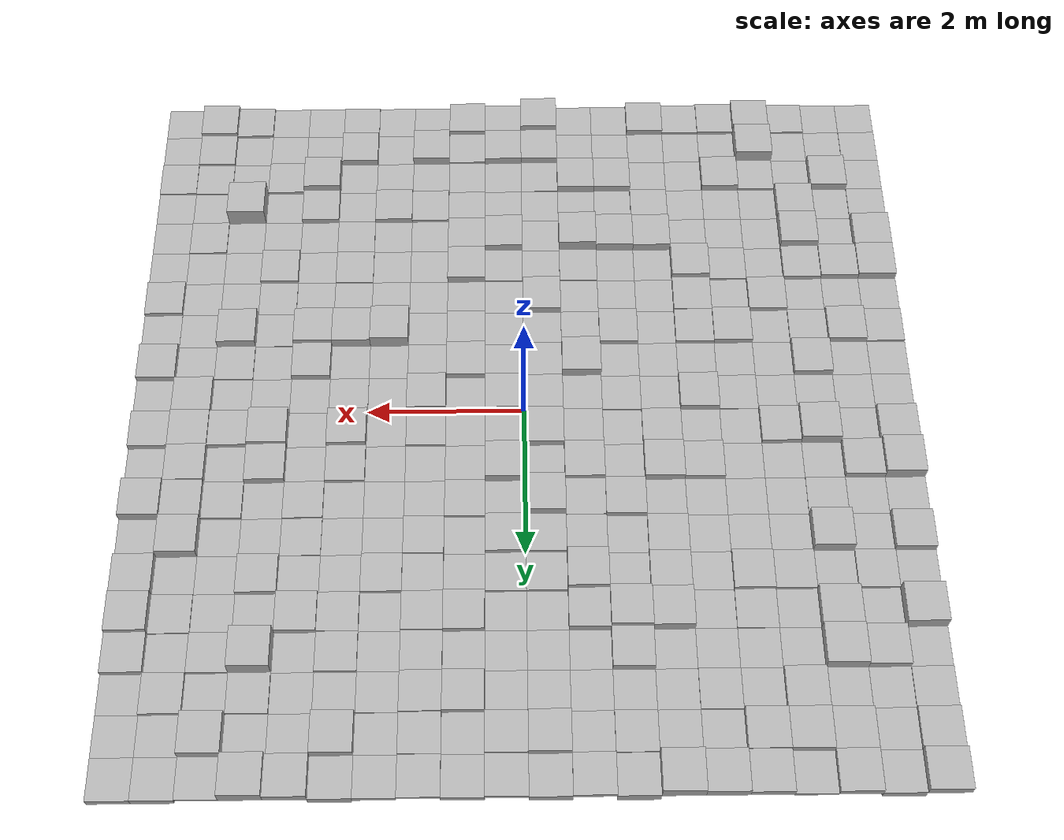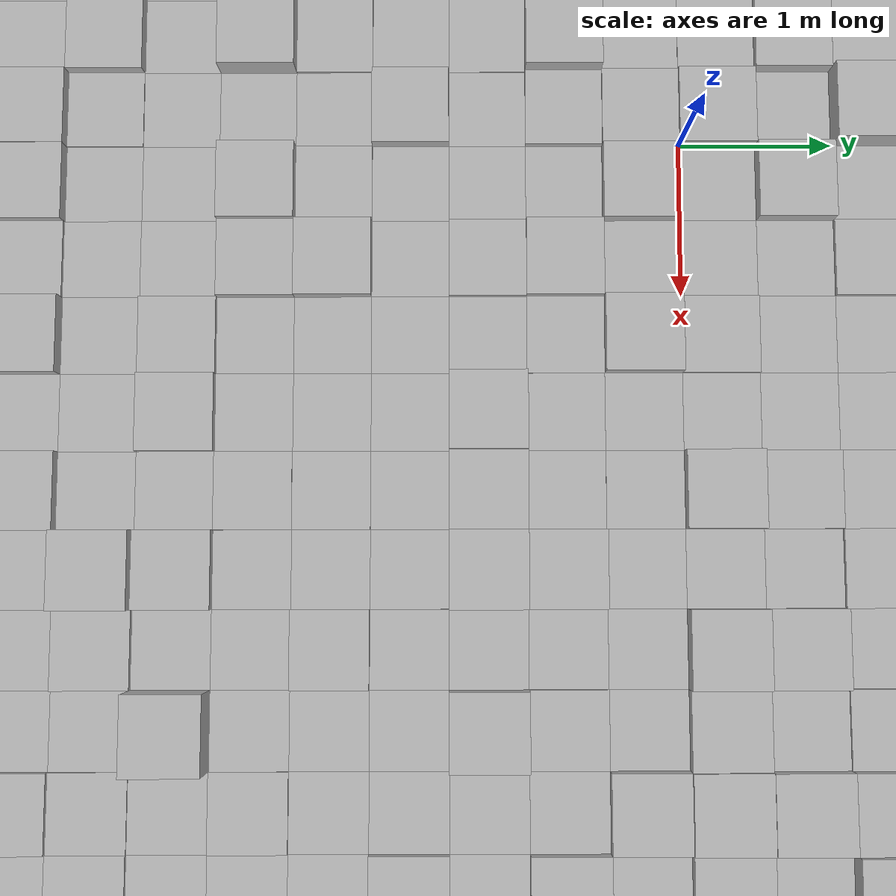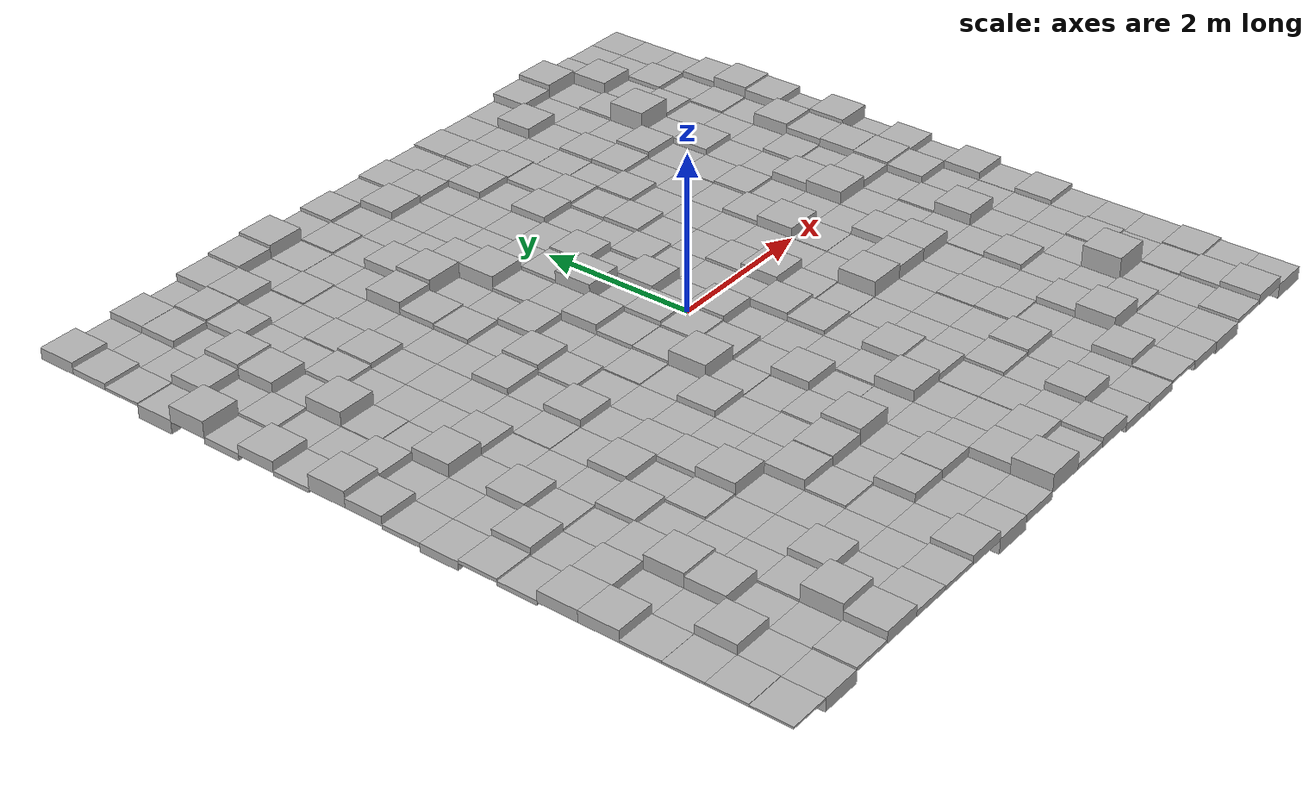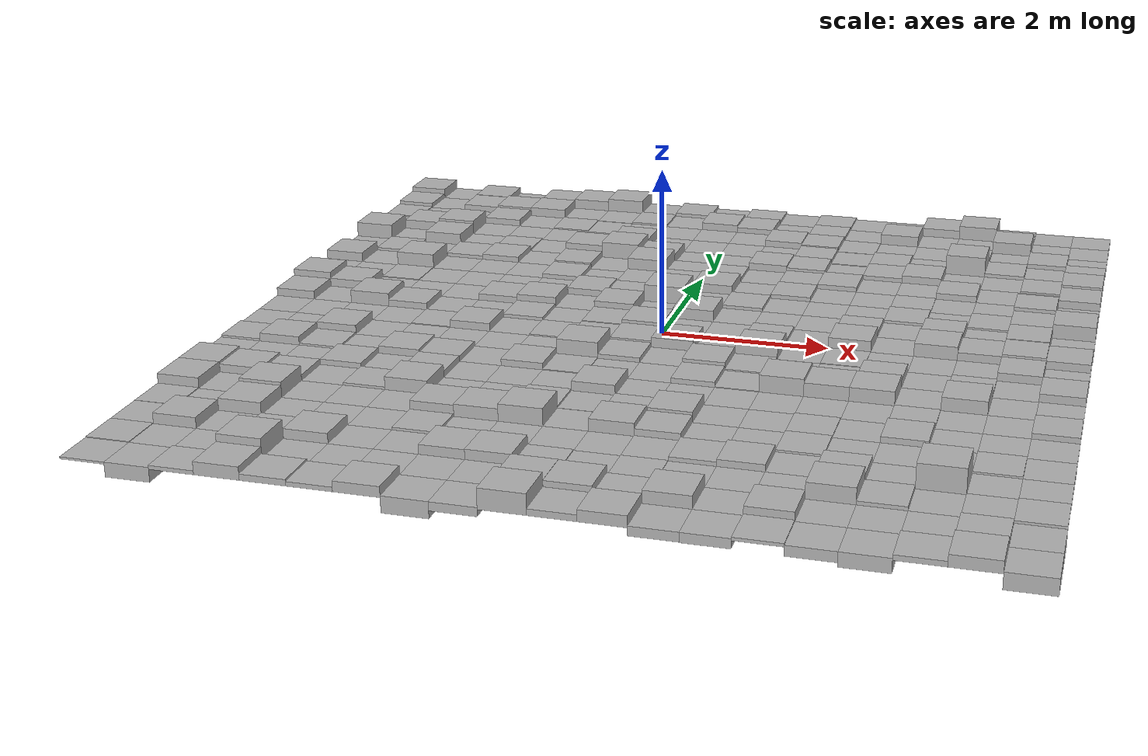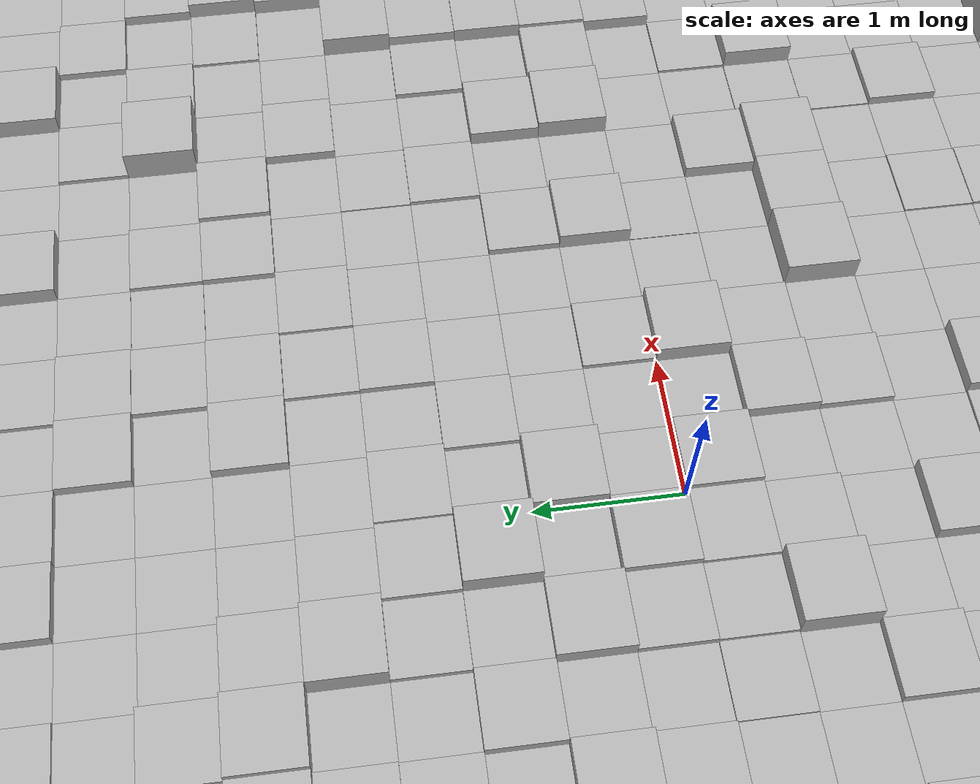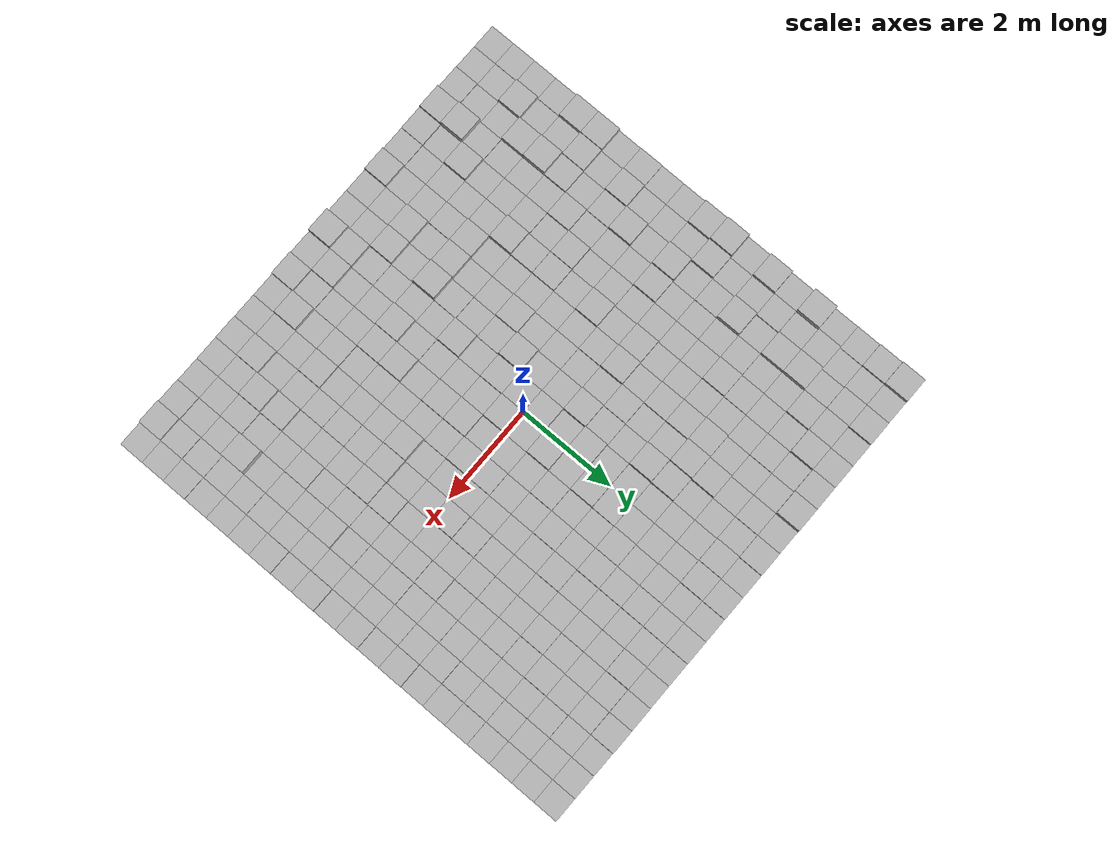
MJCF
<?xml version='1.0' encoding='utf-8'?>
<mujoco model="random_block_terrain"><worldbody><geom type="box" pos="-4.750 -4.750 -0.002" size="0.250 0.250 0.012" rgba="0.7 0.7 0.7 1" /><geom type="box" pos="-4.750 -4.250 0.004" size="0.250 0.250 0.014" rgba="0.7 0.7 0.7 1" /><geom type="box" pos="-4.750 -3.750 0.004" size="0.250 0.250 0.014" rgba="0.7 0.7 0.7 1" /><geom type="box" pos="-4.750 -3.250 0.005" size="0.250 0.250 0.015" rgba="0.7 0.7 0.7 1" /><geom type="box" pos="-4.750 -2.750 0.062" size="0.250 0.250 0.072" rgba="0.7 0.7 0.7 1" /><geom type="box" pos="-4.750 -2.250 0.062" size="0.250 0.250 0.072" rgba="0.7 0.7 0.7 1" /><geom type="box" pos="-4.750 -1.750 -0.019" size="0.250 0.250 0.029" rgba="0.7 0.7 0.7 1" /><geom type="box" pos="-4.750 -1.250 0.013" size="0.250 0.250 0.023" rgba="0.7 0.7 0.7 1" /><geom type="box" pos="-4.750 -0.750 -0.044" size="0.250 0.250 0.054" rgba="0.7 0.7 0.7 1" /><geom type="box" pos="-4.750 -0.250 -0.018" size="0.250 0.250 0.028" rgba="0.7 0.7 0.7 1" /><geom type="box" pos="-4.750 0.250 0.050" size="0.250 0.250 0.060" rgba="0.7 0.7 0.7 1" /><geom type="box" pos="-4.750 0.750 0.091" size="0.250 0.250 0.101" rgba="0.7 0.7 0.7 1" /><geom type="box" pos="-4.750 1.250 -0.017" size="0.250 0.250 0.027" rgba="0.7 0.7 0.7 1" /><geom type="box" pos="-4.750 1.750 0.059" size="0.250 0.250 0.069" rgba="0.7 0.7 0.7 1" /><geom type="box" pos="-4.750 2.250 -0.033" size="0.250 0.250 0.043" rgba="0.7 0.7 0.7 1" /><geom type="box" pos="-4.750 2.750 0.096" size="0.250 0.250 0.106" rgba="0.7 0.7 0.7 1" /><geom type="box" pos="-4.750 3.250 -0.076" size="0.250 0.250 0.086" rgba="0.7 0.7 0.7 1" /><geom type="box" pos="-4.750 3.750 0.007" size="0.250 0.250 0.017" rgba="0.7 0.7 0.7 1" /><geom type="box" pos="-4.750 4.250 0.030" size="0.250 0.250 0.040" rgba="0.7 0.7 0.7 1" /><geom type="box" pos="-4.750 4.750 0.063" size="0.250 0.250 0.073" rgba="0.7 0.7 0.7 1" /><geom type="box" pos="-4.250 -4.750 -0.073" size="0.250 0.250 0.083" rgba="0.7 0.7 0.7 1" /><geom type="box" pos="-4.250 -4.250 -0.061" size="0.250 0.250 0.071" rgba="0.7 0.7 0.7 1" /><geom type="box" pos="-4.250 -3.750 0.062" size="0.250 0.250 0.072" rgba="0.7 0.7 0.7 1" /><geom type="box" pos="-4.250 -3.250 -0.065" size="0.250 0.250 0.075" rgba="0.7 0.7 0.7 1" /><geom type="box" pos="-4.250 -2.750 -0.039" size="0.250 0.250 0.049" rgba="0.7 0.7 0.7 1" /><geom type="box" pos="-4.250 -2.250 0.048" size="0.250 0.250 0.058" rgba="0.7 0.7 0.7 1" /><geom type="box" pos="-4.250 -1.750 -0.014" size="0.250 0.250 0.024" rgba="0.7 0.7 0.7 1" /><geom type="box" pos="-4.250 -1.250 0.050" size="0.250 0.250 0.060" rgba="0.7 0.7 0.7 1" /><geom type="box" pos="-4.250 -0.750 -0.015" size="0.250 0.250 0.025" rgba="0.7 0.7 0.7 1" /><geom type="box" pos="-4.250 -0.250 -0.016" size="0.250 0.250 0.026" rgba="0.7 0.7 0.7 1" /><geom type="box" pos="-4.250 0.250 -0.017" size="0.250 0.250 0.027" rgba="0.7 0.7 0.7 1" /><geom type="box" pos="-4.250 0.750 0.052" size="0.250 0.250 0.062" rgba="0.7 0.7 0.7 1" /><geom type="box" pos="-4.250 1.250 -0.054" size="0.250 0.250 0.064" rgba="0.7 0.7 0.7 1" /><geom type="box" pos="-4.250 1.750 -0.046" size="0.250 0.250 0.056" rgba="0.7 0.7 0.7 1" /><geom type="box" pos="-4.250 2.250 0.018" size="0.250 0.250 0.028" rgba="0.7 0.7 0.7 1" /><geom type="box" pos="-4.250 2.750 -0.065" size="0.250 0.250 0.075" rgba="0.7 0.7 0.7 1" /><geom type="box" pos="-4.250 3.250 0.060" size="0.250 0.250 0.070" rgba="0.7 0.7 0.7 1" /><geom type="box" pos="-4.250 3.750 -0.026" size="0.250 0.250 0.036" rgba="0.7 0.7 0.7 1" /><geom type="box" pos="-4.250 4.250 -0.102" size="0.250 0.250 0.112" rgba="0.7 0.7 0.7 1" /><geom type="box" pos="-4.250 4.750 -0.058" size="0.250 0.250 0.068" rgba="0.7 0.7 0.7 1" /><geom type="box" pos="-3.750 -4.750 0.012" size="0.250 0.250 0.022" rgba="0.7 0.7 0.7 1" /><geom type="box" pos="-3.750 -4.250 -0.021" size="0.250 0.250 0.031" rgba="0.7 0.7 0.7 1" /><geom type="box" pos="-3.750 -3.750 -0.038" size="0.250 0.250 0.048" rgba="0.7 0.7 0.7 1" /><geom type="box" pos="-3.750 -3.250 0.071" size="0.250 0.250 0.081" rgba="0.7 0.7 0.7 1" /><geom type="box" pos="-3.750 -2.750 0.089" size="0.250 0.250 0.099" rgba="0.7 0.7 0.7 1" /><geom type="box" pos="-3.750 -2.250 0.033" size="0.250 0.250 0.043" rgba="0.7 0.7 0.7 1" /><geom type="box" pos="-3.750 -1.750 -0.079" size="0.250 0.250 0.089" rgba="0.7 0.7 0.7 1" /><geom type="box" pos="-3.750 -1.250 0.012" size="0.250 0.250 0.022" rgba="0.7 0.7 0.7 1" /><geom type="box" pos="-3.750 -0.750 0.054" size="0.250 0.250 0.064" rgba="0.7 0.7 0.7 1" /><geom type="box" pos="-3.750 -0.250 -0.020" size="0.250 0.250 0.030" rgba="0.7 0.7 0.7 1" /><geom type="box" pos="-3.750 0.250 0.081" size="0.250 0.250 0.091" rgba="0.7 0.7 0.7 1" /><geom type="box" pos="-3.750 0.750 -0.027" size="0.250 0.250 0.037" rgba="0.7 0.7 0.7 1" /><geom type="box" pos="-3.750 1.250 0.005" size="0.250 0.250 0.015" rgba="0.7 0.7 0.7 1" /><geom type="box" pos="-3.750 1.750 0.089" size="0.250 0.250 0.099" rgba="0.7 0.7 0.7 1" /><geom type="box" pos="-3.750 2.250 -0.058" size="0.250 0.250 0.068" rgba="0.7 0.7 0.7 1" /><geom type="box" pos="-3.750 2.750 0.073" size="0.250 0.250 0.083" rgba="0.7 0.7 0.7 1" /><geom type="box" pos="-3.750 3.250 0.089" size="0.250 0.250 0.099" rgba="0.7 0.7 0.7 1" /><geom type="box" pos="-3.750 3.750 -0.032" size="0.250 0.250 0.042" rgba="0.7 0.7 0.7 1" /><geom type="box" pos="-3.750 4.250 0.042" size="0.250 0.250 0.052" rgba="0.7 0.7 0.7 1" /><geom type="box" pos="-3.750 4.750 0.044" size="0.250 0.250 0.054" rgba="0.7 0.7 0.7 1" /><geom type="box" pos="-3.250 -4.750 0.063" size="0.250 0.250 0.073" rgba="0.7 0.7 0.7 1" /><geom type="box" pos="-3.250 -4.250 0.107" size="0.250 0.250 0.117" rgba="0.7 0.7 0.7 1" /><geom type="box" pos="-3.250 -3.750 0.013" size="0.250 0.250 0.023" rgba="0.7 0.7 0.7 1" /><geom type="box" pos="-3.250 -3.250 -0.046" size="0.250 0.250 0.056" rgba="0.7 0.7 0.7 1" /><geom type="box" pos="-3.250 -2.750 -0.063" size="0.250 0.250 0.073" rgba="0.7 0.7 0.7 1" /><geom type="box" pos="-3.250 -2.250 -0.080" size="0.250 0.250 0.090" rgba="0.7 0.7 0.7 1" /><geom type="box" pos="-3.250 -1.750 0.033" size="0.250 0.250 0.043" rgba="0.7 0.7 0.7 1" /><geom type="box" pos="-3.250 -1.250 -0.034" size="0.250 0.250 0.044" rgba="0.7 0.7 0.7 1" /><geom type="box" pos="-3.250 -0.750 -0.015" size="0.250 0.250 0.025" rgba="0.7 0.7 0.7 1" /><geom type="box" pos="-3.250 -0.250 -0.086" size="0.250 0.250 0.096" rgba="0.7 0.7 0.7 1" /><geom type="box" pos="-3.250 0.250 0.041" size="0.250 0.250 0.051" rgba="0.7 0.7 0.7 1" /><geom type="box" pos="-3.250 0.750 -0.087" size="0.250 0.250 0.097" rgba="0.7 0.7 0.7 1" /><geom type="box" pos="-3.250 1.250 -0.027" size="0.250 0.250 0.037" rgba="0.7 0.7 0.7 1" /><geom type="box" pos="-3.250 1.750 -0.057" size="0.250 0.250 0.067" rgba="0.7 0.7 0.7 1" /><geom type="box" pos="-3.250 2.250 0.023" size="0.250 0.250 0.033" rgba="0.7 0.7 0.7 1" /><geom type="box" pos="-3.250 2.750 -0.022" size="0.250 0.250 0.032" rgba="0.7 0.7 0.7 1" /><geom type="box" pos="-3.250 3.250 -0.049" size="0.250 0.250 0.059" rgba="0.7 0.7 0.7 1" /><geom type="box" pos="-3.250 3.750 0.042" size="0.250 0.250 0.052" rgba="0.7 0.7 0.7 1" /><geom type="box" pos="-3.250 4.250 0.055" size="0.250 0.250 0.065" rgba="0.7 0.7 0.7 1" /><geom type="box" pos="-3.250 4.750 -0.015" size="0.250 0.250 0.025" rgba="0.7 0.7 0.7 1" /><geom type="box" pos="-2.750 -4.750 0.025" size="0.250 0.250 0.035" rgba="0.7 0.7 0.7 1" /><geom type="box" pos="-2.750 -4.250 -0.051" size="0.250 0.250 0.061" rgba="0.7 0.7 0.7 1" /><geom type="box" pos="-2.750 -3.750 0.057" size="0.250 0.250 0.067" rgba="0.7 0.7 0.7 1" /><geom type="box" pos="-2.750 -3.250 -0.013" size="0.250 0.250 0.023" rgba="0.7 0.7 0.7 1" /><geom type="box" pos="-2.750 -2.750 -0.087" size="0.250 0.250 0.097" rgba="0.7 0.7 0.7 1" /><geom type="box" pos="-2.750 -2.250 0.015" size="0.250 0.250 0.025" rgba="0.7 0.7 0.7 1" /><geom type="box" pos="-2.750 -1.750 -0.022" size="0.250 0.250 0.032" rgba="0.7 0.7 0.7 1" /><geom type="box" pos="-2.750 -1.250 0.045" size="0.250 0.250 0.055" rgba="0.7 0.7 0.7 1" /><geom type="box" pos="-2.750 -0.750 -0.032" size="0.250 0.250 0.042" rgba="0.7 0.7 0.7 1" /><geom type="box" pos="-2.750 -0.250 0.005" size="0.250 0.250 0.015" rgba="0.7 0.7 0.7 1" /><geom type="box" pos="-2.750 0.250 -0.006" size="0.250 0.250 0.016" rgba="0.7 0.7 0.7 1" /><geom type="box" pos="-2.750 0.750 -0.035" size="0.250 0.250 0.045" rgba="0.7 0.7 0.7 1" /><geom type="box" pos="-2.750 1.250 -0.075" size="0.250 0.250 0.085" rgba="0.7 0.7 0.7 1" /><geom type="box" pos="-2.750 1.750 -0.089" size="0.250 0.250 0.099" rgba="0.7 0.7 0.7 1" /><geom type="box" pos="-2.750 2.250 0.035" size="0.250 0.250 0.045" rgba="0.7 0.7 0.7 1" /><geom type="box" pos="-2.750 2.750 0.009" size="0.250 0.250 0.019" rgba="0.7 0.7 0.7 1" /><geom type="box" pos="-2.750 3.250 -0.012" size="0.250 0.250 0.022" rgba="0.7 0.7 0.7 1" /><geom type="box" pos="-2.750 3.750 -0.081" size="0.250 0.250 0.091" rgba="0.7 0.7 0.7 1" /><geom type="box" pos="-2.750 4.250 0.059" size="0.250 0.250 0.069" rgba="0.7 0.7 0.7 1" /><geom type="box" pos="-2.750 4.750 0.048" size="0.250 0.250 0.058" rgba="0.7 0.7 0.7 1" /><geom type="box" pos="-2.250 -4.750 0.015" size="0.250 0.250 0.025" rgba="0.7 0.7 0.7 1" /><geom type="box" pos="-2.250 -4.250 -0.055" size="0.250 0.250 0.065" rgba="0.7 0.7 0.7 1" /><geom type="box" pos="-2.250 -3.750 -0.010" size="0.250 0.250 0.020" rgba="0.7 0.7 0.7 1" /><geom type="box" pos="-2.250 -3.250 -0.070" size="0.250 0.250 0.080" rgba="0.7 0.7 0.7 1" /><geom type="box" pos="-2.250 -2.750 -0.059" size="0.250 0.250 0.069" rgba="0.7 0.7 0.7 1" /><geom type="box" pos="-2.250 -2.250 0.077" size="0.250 0.250 0.087" rgba="0.7 0.7 0.7 1" /><geom type="box" pos="-2.250 -1.750 0.035" size="0.250 0.250 0.045" rgba="0.7 0.7 0.7 1" /><geom type="box" pos="-2.250 -1.250 0.029" size="0.250 0.250 0.039" rgba="0.7 0.7 0.7 1" /><geom type="box" pos="-2.250 -0.750 -0.019" size="0.250 0.250 0.029" rgba="0.7 0.7 0.7 1" /><geom type="box" pos="-2.250 -0.250 0.048" size="0.250 0.250 0.058" rgba="0.7 0.7 0.7 1" /><geom type="box" pos="-2.250 0.250 -0.068" size="0.250 0.250 0.078" rgba="0.7 0.7 0.7 1" /><geom type="box" pos="-2.250 0.750 0.041" size="0.250 0.250 0.051" rgba="0.7 0.7 0.7 1" /><geom type="box" pos="-2.250 1.250 -0.025" size="0.250 0.250 0.035" rgba="0.7 0.7 0.7 1" /><geom type="box" pos="-2.250 1.750 -0.003" size="0.250 0.250 0.013" rgba="0.7 0.7 0.7 1" /><geom type="box" pos="-2.250 2.250 -0.032" size="0.250 0.250 0.042" rgba="0.7 0.7 0.7 1" /><geom type="box" pos="-2.250 2.750 -0.021" size="0.250 0.250 0.031" rgba="0.7 0.7 0.7 1" /><geom type="box" pos="-2.250 3.250 -0.050" size="0.250 0.250 0.060" rgba="0.7 0.7 0.7 1" /><geom type="box" pos="-2.250 3.750 0.008" size="0.250 0.250 0.018" rgba="0.7 0.7 0.7 1" /><geom type="box" pos="-2.250 4.250 -0.101" size="0.250 0.250 0.111" rgba="0.7 0.7 0.7 1" /><geom type="box" pos="-2.250 4.750 0.066" size="0.250 0.250 0.076" rgba="0.7 0.7 0.7 1" /><geom type="box" pos="-1.750 -4.750 0.049" size="0.250 0.250 0.059" rgba="0.7 0.7 0.7 1" /><geom type="box" pos="-1.750 -4.250 -0.027" size="0.250 0.250 0.037" rgba="0.7 0.7 0.7 1" /><geom type="box" pos="-1.750 -3.750 -0.111" size="0.250 0.250 0.121" rgba="0.7 0.7 0.7 1" /><geom type="box" pos="-1.750 -3.250 0.015" size="0.250 0.250 0.025" rgba="0.7 0.7 0.7 1" /><geom type="box" pos="-1.750 -2.750 0.065" size="0.250 0.250 0.075" rgba="0.7 0.7 0.7 1" /><geom type="box" pos="-1.750 -2.250 -0.140" size="0.250 0.250 0.150" rgba="0.7 0.7 0.7 1" /><geom type="box" pos="-1.750 -1.750 -0.098" size="0.250 0.250 0.108" rgba="0.7 0.7 0.7 1" /><geom type="box" pos="-1.750 -1.250 -0.012" size="0.250 0.250 0.022" rgba="0.7 0.7 0.7 1" /><geom type="box" pos="-1.750 -0.750 -0.051" size="0.250 0.250 0.061" rgba="0.7 0.7 0.7 1" /><geom type="box" pos="-1.750 -0.250 -0.030" size="0.250 0.250 0.040" rgba="0.7 0.7 0.7 1" /><geom type="box" pos="-1.750 0.250 0.021" size="0.250 0.250 0.031" rgba="0.7 0.7 0.7 1" /><geom type="box" pos="-1.750 0.750 0.061" size="0.250 0.250 0.071" rgba="0.7 0.7 0.7 1" /><geom type="box" pos="-1.750 1.250 -0.028" size="0.250 0.250 0.038" rgba="0.7 0.7 0.7 1" /><geom type="box" pos="-1.750 1.750 0.028" size="0.250 0.250 0.038" rgba="0.7 0.7 0.7 1" /><geom type="box" pos="-1.750 2.250 0.038" size="0.250 0.250 0.048" rgba="0.7 0.7 0.7 1" /><geom type="box" pos="-1.750 2.750 0.078" size="0.250 0.250 0.088" rgba="0.7 0.7 0.7 1" /><geom type="box" pos="-1.750 3.250 -0.015" size="0.250 0.250 0.025" rgba="0.7 0.7 0.7 1" /><geom type="box" pos="-1.750 3.750 -0.008" size="0.250 0.250 0.018" rgba="0.7 0.7 0.7 1" /><geom type="box" pos="-1.750 4.250 0.002" size="0.250 0.250 0.012" rgba="0.7 0.7 0.7 1" /><geom type="box" pos="-1.750 4.750 0.087" size="0.250 0.250 0.097" rgba="0.7 0.7 0.7 1" /><geom type="box" pos="-1.250 -4.750 -0.083" size="0.250 0.250 0.093" rgba="0.7 0.7 0.7 1" /><geom type="box" pos="-1.250 -4.250 -0.013" size="0.250 0.250 0.023" rgba="0.7 0.7 0.7 1" /><geom type="box" pos="-1.250 -3.750 0.055" size="0.250 0.250 0.065" rgba="0.7 0.7 0.7 1" /><geom type="box" pos="-1.250 -3.250 -0.004" size="0.250 0.250 0.014" rgba="0.7 0.7 0.7 1" /><geom type="box" pos="-1.250 -2.750 0.071" size="0.250 0.250 0.081" rgba="0.7 0.7 0.7 1" /><geom type="box" pos="-1.250 -2.250 -0.115" size="0.250 0.250 0.125" rgba="0.7 0.7 0.7 1" /><geom type="box" pos="-1.250 -1.750 -0.040" size="0.250 0.250 0.050" rgba="0.7 0.7 0.7 1" /><geom type="box" pos="-1.250 -1.250 0.040" size="0.250 0.250 0.050" rgba="0.7 0.7 0.7 1" /><geom type="box" pos="-1.250 -0.750 -0.012" size="0.250 0.250 0.022" rgba="0.7 0.7 0.7 1" /><geom type="box" pos="-1.250 -0.250 0.008" size="0.250 0.250 0.018" rgba="0.7 0.7 0.7 1" /><geom type="box" pos="-1.250 0.250 -0.004" size="0.250 0.250 0.014" rgba="0.7 0.7 0.7 1" /><geom type="box" pos="-1.250 0.750 -0.010" size="0.250 0.250 0.020" rgba="0.7 0.7 0.7 1" /><geom type="box" pos="-1.250 1.250 0.041" size="0.250 0.250 0.051" rgba="0.7 0.7 0.7 1" /><geom type="box" pos="-1.250 1.750 -0.067" size="0.250 0.250 0.077" rgba="0.7 0.7 0.7 1" /><geom type="box" pos="-1.250 2.250 -0.029" size="0.250 0.250 0.039" rgba="0.7 0.7 0.7 1" /><geom type="box" pos="-1.250 2.750 0.102" size="0.250 0.250 0.112" rgba="0.7 0.7 0.7 1" /><geom type="box" pos="-1.250 3.250 0.062" size="0.250 0.250 0.072" rgba="0.7 0.7 0.7 1" /><geom type="box" pos="-1.250 3.750 -0.053" size="0.250 0.250 0.063" rgba="0.7 0.7 0.7 1" /><geom type="box" pos="-1.250 4.250 0.012" size="0.250 0.250 0.022" rgba="0.7 0.7 0.7 1" /><geom type="box" pos="-1.250 4.750 -0.073" size="0.250 0.250 0.083" rgba="0.7 0.7 0.7 1" /><geom type="box" pos="-0.750 -4.750 -0.039" size="0.250 0.250 0.049" rgba="0.7 0.7 0.7 1" /><geom type="box" pos="-0.750 -4.250 -0.004" size="0.250 0.250 0.014" rgba="0.7 0.7 0.7 1" /><geom type="box" pos="-0.750 -3.750 0.058" size="0.250 0.250 0.068" rgba="0.7 0.7 0.7 1" /><geom type="box" pos="-0.750 -3.250 -0.009" size="0.250 0.250 0.019" rgba="0.7 0.7 0.7 1" /><geom type="box" pos="-0.750 -2.750 0.100" size="0.250 0.250 0.110" rgba="0.7 0.7 0.7 1" /><geom type="box" pos="-0.750 -2.250 0.012" size="0.250 0.250 0.022" rgba="0.7 0.7 0.7 1" /><geom type="box" pos="-0.750 -1.750 -0.037" size="0.250 0.250 0.047" rgba="0.7 0.7 0.7 1" /><geom type="box" pos="-0.750 -1.250 0.005" size="0.250 0.250 0.015" rgba="0.7 0.7 0.7 1" /><geom type="box" pos="-0.750 -0.750 0.095" size="0.250 0.250 0.105" rgba="0.7 0.7 0.7 1" /><geom type="box" pos="-0.750 -0.250 0.023" size="0.250 0.250 0.033" rgba="0.7 0.7 0.7 1" /><geom type="box" pos="-0.750 0.250 0.027" size="0.250 0.250 0.037" rgba="0.7 0.7 0.7 1" /><geom type="box" pos="-0.750 0.750 0.064" size="0.250 0.250 0.074" rgba="0.7 0.7 0.7 1" /><geom type="box" pos="-0.750 1.250 0.029" size="0.250 0.250 0.039" rgba="0.7 0.7 0.7 1" /><geom type="box" pos="-0.750 1.750 0.023" size="0.250 0.250 0.033" rgba="0.7 0.7 0.7 1" /><geom type="box" pos="-0.750 2.250 0.095" size="0.250 0.250 0.105" rgba="0.7 0.7 0.7 1" /><geom type="box" pos="-0.750 2.750 0.057" size="0.250 0.250 0.067" rgba="0.7 0.7 0.7 1" /><geom type="box" pos="-0.750 3.250 -0.002" size="0.250 0.250 0.012" rgba="0.7 0.7 0.7 1" /><geom type="box" pos="-0.750 3.750 -0.040" size="0.250 0.250 0.050" rgba="0.7 0.7 0.7 1" /><geom type="box" pos="-0.750 4.250 -0.025" size="0.250 0.250 0.035" rgba="0.7 0.7 0.7 1" /><geom type="box" pos="-0.750 4.750 0.023" size="0.250 0.250 0.033" rgba="0.7 0.7 0.7 1" /><geom type="box" pos="-0.250 -4.750 0.105" size="0.250 0.250 0.115" rgba="0.7 0.7 0.7 1" /><geom type="box" pos="-0.250 -4.250 0.062" size="0.250 0.250 0.072" rgba="0.7 0.7 0.7 1" /><geom type="box" pos="-0.250 -3.750 0.006" size="0.250 0.250 0.016" rgba="0.7 0.7 0.7 1" /><geom type="box" pos="-0.250 -3.250 -0.093" size="0.250 0.250 0.103" rgba="0.7 0.7 0.7 1" /><geom type="box" pos="-0.250 -2.750 -0.046" size="0.250 0.250 0.056" rgba="0.7 0.7 0.7 1" /><geom type="box" pos="-0.250 -2.250 0.001" size="0.250 0.250 0.011" rgba="0.7 0.7 0.7 1" /><geom type="box" pos="-0.250 -1.750 0.058" size="0.250 0.250 0.068" rgba="0.7 0.7 0.7 1" /><geom type="box" pos="-0.250 -1.250 -0.041" size="0.250 0.250 0.051" rgba="0.7 0.7 0.7 1" /><geom type="box" pos="-0.250 -0.750 0.027" size="0.250 0.250 0.037" rgba="0.7 0.7 0.7 1" /><geom type="box" pos="-0.250 -0.250 0.038" size="0.250 0.250 0.048" rgba="0.7 0.7 0.7 1" /><geom type="box" pos="-0.250 0.250 0.057" size="0.250 0.250 0.067" rgba="0.7 0.7 0.7 1" /><geom type="box" pos="-0.250 0.750 -0.078" size="0.250 0.250 0.088" rgba="0.7 0.7 0.7 1" /><geom type="box" pos="-0.250 1.250 0.106" size="0.250 0.250 0.116" rgba="0.7 0.7 0.7 1" /><geom type="box" pos="-0.250 1.750 0.045" size="0.250 0.250 0.055" rgba="0.7 0.7 0.7 1" /><geom type="box" pos="-0.250 2.250 0.020" size="0.250 0.250 0.030" rgba="0.7 0.7 0.7 1" /><geom type="box" pos="-0.250 2.750 -0.043" size="0.250 0.250 0.053" rgba="0.7 0.7 0.7 1" /><geom type="box" pos="-0.250 3.250 -0.073" size="0.250 0.250 0.083" rgba="0.7 0.7 0.7 1" /><geom type="box" pos="-0.250 3.750 -0.006" size="0.250 0.250 0.016" rgba="0.7 0.7 0.7 1" /><geom type="box" pos="-0.250 4.250 0.049" size="0.250 0.250 0.059" rgba="0.7 0.7 0.7 1" /><geom type="box" pos="-0.250 4.750 -0.060" size="0.250 0.250 0.070" rgba="0.7 0.7 0.7 1" /><geom type="box" pos="0.250 -4.750 0.026" size="0.250 0.250 0.036" rgba="0.7 0.7 0.7 1" /><geom type="box" pos="0.250 -4.250 0.060" size="0.250 0.250 0.070" rgba="0.7 0.7 0.7 1" /><geom type="box" pos="0.250 -3.750 -0.061" size="0.250 0.250 0.071" rgba="0.7 0.7 0.7 1" /><geom type="box" pos="0.250 -3.250 -0.021" size="0.250 0.250 0.031" rgba="0.7 0.7 0.7 1" /><geom type="box" pos="0.250 -2.750 0.072" size="0.250 0.250 0.082" rgba="0.7 0.7 0.7 1" /><geom type="box" pos="0.250 -2.250 0.012" size="0.250 0.250 0.022" rgba="0.7 0.7 0.7 1" /><geom type="box" pos="0.250 -1.750 -0.045" size="0.250 0.250 0.055" rgba="0.7 0.7 0.7 1" /><geom type="box" pos="0.250 -1.250 -0.036" size="0.250 0.250 0.046" rgba="0.7 0.7 0.7 1" /><geom type="box" pos="0.250 -0.750 -0.028" size="0.250 0.250 0.038" rgba="0.7 0.7 0.7 1" /><geom type="box" pos="0.250 -0.250 0.060" size="0.250 0.250 0.070" rgba="0.7 0.7 0.7 1" /><geom type="box" pos="0.250 0.250 -0.005" size="0.250 0.250 0.015" rgba="0.7 0.7 0.7 1" /><geom type="box" pos="0.250 0.750 0.068" size="0.250 0.250 0.078" rgba="0.7 0.7 0.7 1" /><geom type="box" pos="0.250 1.250 -0.071" size="0.250 0.250 0.081" rgba="0.7 0.7 0.7 1" /><geom type="box" pos="0.250 1.750 0.056" size="0.250 0.250 0.066" rgba="0.7 0.7 0.7 1" /><geom type="box" pos="0.250 2.250 0.020" size="0.250 0.250 0.030" rgba="0.7 0.7 0.7 1" /><geom type="box" pos="0.250 2.750 -0.007" size="0.250 0.250 0.017" rgba="0.7 0.7 0.7 1" /><geom type="box" pos="0.250 3.250 -0.105" size="0.250 0.250 0.115" rgba="0.7 0.7 0.7 1" /><geom type="box" pos="0.250 3.750 -0.061" size="0.250 0.250 0.071" rgba="0.7 0.7 0.7 1" /><geom type="box" pos="0.250 4.250 0.035" size="0.250 0.250 0.045" rgba="0.7 0.7 0.7 1" /><geom type="box" pos="0.250 4.750 0.017" size="0.250 0.250 0.027" rgba="0.7 0.7 0.7 1" /><geom type="box" pos="0.750 -4.750 0.053" size="0.250 0.250 0.063" rgba="0.7 0.7 0.7 1" /><geom type="box" pos="0.750 -4.250 0.019" size="0.250 0.250 0.029" rgba="0.7 0.7 0.7 1" /><geom type="box" pos="0.750 -3.750 0.004" size="0.250 0.250 0.014" rgba="0.7 0.7 0.7 1" /><geom type="box" pos="0.750 -3.250 0.004" size="0.250 0.250 0.014" rgba="0.7 0.7 0.7 1" /><geom type="box" pos="0.750 -2.750 0.043" size="0.250 0.250 0.053" rgba="0.7 0.7 0.7 1" /><geom type="box" pos="0.750 -2.250 0.059" size="0.250 0.250 0.069" rgba="0.7 0.7 0.7 1" /><geom type="box" pos="0.750 -1.750 -0.107" size="0.250 0.250 0.117" rgba="0.7 0.7 0.7 1" /><geom type="box" pos="0.750 -1.250 0.030" size="0.250 0.250 0.040" rgba="0.7 0.7 0.7 1" /><geom type="box" pos="0.750 -0.750 0.050" size="0.250 0.250 0.060" rgba="0.7 0.7 0.7 1" /><geom type="box" pos="0.750 -0.250 -0.037" size="0.250 0.250 0.047" rgba="0.7 0.7 0.7 1" /><geom type="box" pos="0.750 0.250 -0.006" size="0.250 0.250 0.016" rgba="0.7 0.7 0.7 1" /><geom type="box" pos="0.750 0.750 -0.004" size="0.250 0.250 0.014" rgba="0.7 0.7 0.7 1" /><geom type="box" pos="0.750 1.250 0.020" size="0.250 0.250 0.030" rgba="0.7 0.7 0.7 1" /><geom type="box" pos="0.750 1.750 -0.035" size="0.250 0.250 0.045" rgba="0.7 0.7 0.7 1" /><geom type="box" pos="0.750 2.250 -0.065" size="0.250 0.250 0.075" rgba="0.7 0.7 0.7 1" /><geom type="box" pos="0.750 2.750 0.046" size="0.250 0.250 0.056" rgba="0.7 0.7 0.7 1" /><geom type="box" pos="0.750 3.250 -0.095" size="0.250 0.250 0.105" rgba="0.7 0.7 0.7 1" /><geom type="box" pos="0.750 3.750 0.042" size="0.250 0.250 0.052" rgba="0.7 0.7 0.7 1" /><geom type="box" pos="0.750 4.250 -0.009" size="0.250 0.250 0.019" rgba="0.7 0.7 0.7 1" /><geom type="box" pos="0.750 4.750 -0.042" size="0.250 0.250 0.052" rgba="0.7 0.7 0.7 1" /><geom type="box" pos="1.250 -4.750 -0.042" size="0.250 0.250 0.052" rgba="0.7 0.7 0.7 1" /><geom type="box" pos="1.250 -4.250 0.070" size="0.250 0.250 0.080" rgba="0.7 0.7 0.7 1" /><geom type="box" pos="1.250 -3.750 -0.063" size="0.250 0.250 0.073" rgba="0.7 0.7 0.7 1" /><geom type="box" pos="1.250 -3.250 0.024" size="0.250 0.250 0.034" rgba="0.7 0.7 0.7 1" /><geom type="box" pos="1.250 -2.750 -0.078" size="0.250 0.250 0.088" rgba="0.7 0.7 0.7 1" /><geom type="box" pos="1.250 -2.250 -0.059" size="0.250 0.250 0.069" rgba="0.7 0.7 0.7 1" /><geom type="box" pos="1.250 -1.750 -0.037" size="0.250 0.250 0.047" rgba="0.7 0.7 0.7 1" /><geom type="box" pos="1.250 -1.250 0.004" size="0.250 0.250 0.014" rgba="0.7 0.7 0.7 1" /><geom type="box" pos="1.250 -0.750 0.012" size="0.250 0.250 0.022" rgba="0.7 0.7 0.7 1" /><geom type="box" pos="1.250 -0.250 0.070" size="0.250 0.250 0.080" rgba="0.7 0.7 0.7 1" /><geom type="box" pos="1.250 0.250 0.019" size="0.250 0.250 0.029" rgba="0.7 0.7 0.7 1" /><geom type="box" pos="1.250 0.750 -0.053" size="0.250 0.250 0.063" rgba="0.7 0.7 0.7 1" /><geom type="box" pos="1.250 1.250 -0.025" size="0.250 0.250 0.035" rgba="0.7 0.7 0.7 1" /><geom type="box" pos="1.250 1.750 0.026" size="0.250 0.250 0.036" rgba="0.7 0.7 0.7 1" /><geom type="box" pos="1.250 2.250 0.017" size="0.250 0.250 0.027" rgba="0.7 0.7 0.7 1" /><geom type="box" pos="1.250 2.750 0.035" size="0.250 0.250 0.045" rgba="0.7 0.7 0.7 1" /><geom type="box" pos="1.250 3.250 0.025" size="0.250 0.250 0.035" rgba="0.7 0.7 0.7 1" /><geom type="box" pos="1.250 3.750 0.032" size="0.250 0.250 0.042" rgba="0.7 0.7 0.7 1" /><geom type="box" pos="1.250 4.250 0.019" size="0.250 0.250 0.029" rgba="0.7 0.7 0.7 1" /><geom type="box" pos="1.250 4.750 0.014" size="0.250 0.250 0.024" rgba="0.7 0.7 0.7 1" /><geom type="box" pos="1.750 -4.750 -0.044" size="0.250 0.250 0.054" rgba="0.7 0.7 0.7 1" /><geom type="box" pos="1.750 -4.250 -0.027" size="0.250 0.250 0.037" rgba="0.7 0.7 0.7 1" /><geom type="box" pos="1.750 -3.750 -0.044" size="0.250 0.250 0.054" rgba="0.7 0.7 0.7 1" /><geom type="box" pos="1.750 -3.250 0.039" size="0.250 0.250 0.049" rgba="0.7 0.7 0.7 1" /><geom type="box" pos="1.750 -2.750 -0.038" size="0.250 0.250 0.048" rgba="0.7 0.7 0.7 1" /><geom type="box" pos="1.750 -2.250 -0.005" size="0.250 0.250 0.015" rgba="0.7 0.7 0.7 1" /><geom type="box" pos="1.750 -1.750 -0.088" size="0.250 0.250 0.098" rgba="0.7 0.7 0.7 1" /><geom type="box" pos="1.750 -1.250 0.101" size="0.250 0.250 0.111" rgba="0.7 0.7 0.7 1" /><geom type="box" pos="1.750 -0.750 -0.002" size="0.250 0.250 0.012" rgba="0.7 0.7 0.7 1" /><geom type="box" pos="1.750 -0.250 -0.079" size="0.250 0.250 0.089" rgba="0.7 0.7 0.7 1" /><geom type="box" pos="1.750 0.250 -0.026" size="0.250 0.250 0.036" rgba="0.7 0.7 0.7 1" /><geom type="box" pos="1.750 0.750 -0.060" size="0.250 0.250 0.070" rgba="0.7 0.7 0.7 1" /><geom type="box" pos="1.750 1.250 -0.064" size="0.250 0.250 0.074" rgba="0.7 0.7 0.7 1" /><geom type="box" pos="1.750 1.750 -0.018" size="0.250 0.250 0.028" rgba="0.7 0.7 0.7 1" /><geom type="box" pos="1.750 2.250 0.030" size="0.250 0.250 0.040" rgba="0.7 0.7 0.7 1" /><geom type="box" pos="1.750 2.750 -0.018" size="0.250 0.250 0.028" rgba="0.7 0.7 0.7 1" /><geom type="box" pos="1.750 3.250 0.004" size="0.250 0.250 0.014" rgba="0.7 0.7 0.7 1" /><geom type="box" pos="1.750 3.750 0.005" size="0.250 0.250 0.015" rgba="0.7 0.7 0.7 1" /><geom type="box" pos="1.750 4.250 -0.036" size="0.250 0.250 0.046" rgba="0.7 0.7 0.7 1" /><geom type="box" pos="1.750 4.750 -0.025" size="0.250 0.250 0.035" rgba="0.7 0.7 0.7 1" /><geom type="box" pos="2.250 -4.750 0.008" size="0.250 0.250 0.018" rgba="0.7 0.7 0.7 1" /><geom type="box" pos="2.250 -4.250 0.049" size="0.250 0.250 0.059" rgba="0.7 0.7 0.7 1" /><geom type="box" pos="2.250 -3.750 -0.087" size="0.250 0.250 0.097" rgba="0.7 0.7 0.7 1" /><geom type="box" pos="2.250 -3.250 -0.013" size="0.250 0.250 0.023" rgba="0.7 0.7 0.7 1" /><geom type="box" pos="2.250 -2.750 0.012" size="0.250 0.250 0.022" rgba="0.7 0.7 0.7 1" /><geom type="box" pos="2.250 -2.250 0.008" size="0.250 0.250 0.018" rgba="0.7 0.7 0.7 1" /><geom type="box" pos="2.250 -1.750 -0.005" size="0.250 0.250 0.015" rgba="0.7 0.7 0.7 1" /><geom type="box" pos="2.250 -1.250 0.081" size="0.250 0.250 0.091" rgba="0.7 0.7 0.7 1" /><geom type="box" pos="2.250 -0.750 -0.022" size="0.250 0.250 0.032" rgba="0.7 0.7 0.7 1" /><geom type="box" pos="2.250 -0.250 0.003" size="0.250 0.250 0.013" rgba="0.7 0.7 0.7 1" /><geom type="box" pos="2.250 0.250 0.066" size="0.250 0.250 0.076" rgba="0.7 0.7 0.7 1" /><geom type="box" pos="2.250 0.750 0.027" size="0.250 0.250 0.037" rgba="0.7 0.7 0.7 1" /><geom type="box" pos="2.250 1.250 -0.074" size="0.250 0.250 0.084" rgba="0.7 0.7 0.7 1" /><geom type="box" pos="2.250 1.750 -0.002" size="0.250 0.250 0.012" rgba="0.7 0.7 0.7 1" /><geom type="box" pos="2.250 2.250 -0.031" size="0.250 0.250 0.041" rgba="0.7 0.7 0.7 1" /><geom type="box" pos="2.250 2.750 0.027" size="0.250 0.250 0.037" rgba="0.7 0.7 0.7 1" /><geom type="box" pos="2.250 3.250 0.022" size="0.250 0.250 0.032" rgba="0.7 0.7 0.7 1" /><geom type="box" pos="2.250 3.750 -0.004" size="0.250 0.250 0.014" rgba="0.7 0.7 0.7 1" /><geom type="box" pos="2.250 4.250 0.068" size="0.250 0.250 0.078" rgba="0.7 0.7 0.7 1" /><geom type="box" pos="2.250 4.750 -0.059" size="0.250 0.250 0.069" rgba="0.7 0.7 0.7 1" /><geom type="box" pos="2.750 -4.750 -0.047" size="0.250 0.250 0.057" rgba="0.7 0.7 0.7 1" /><geom type="box" pos="2.750 -4.250 -0.081" size="0.250 0.250 0.091" rgba="0.7 0.7 0.7 1" /><geom type="box" pos="2.750 -3.750 0.090" size="0.250 0.250 0.100" rgba="0.7 0.7 0.7 1" /><geom type="box" pos="2.750 -3.250 0.040" size="0.250 0.250 0.050" rgba="0.7 0.7 0.7 1" /><geom type="box" pos="2.750 -2.750 -0.074" size="0.250 0.250 0.084" rgba="0.7 0.7 0.7 1" /><geom type="box" pos="2.750 -2.250 -0.002" size="0.250 0.250 0.012" rgba="0.7 0.7 0.7 1" /><geom type="box" pos="2.750 -1.750 -0.010" size="0.250 0.250 0.020" rgba="0.7 0.7 0.7 1" /><geom type="box" pos="2.750 -1.250 0.081" size="0.250 0.250 0.091" rgba="0.7 0.7 0.7 1" /><geom type="box" pos="2.750 -0.750 0.050" size="0.250 0.250 0.060" rgba="0.7 0.7 0.7 1" /><geom type="box" pos="2.750 -0.250 -0.074" size="0.250 0.250 0.084" rgba="0.7 0.7 0.7 1" /><geom type="box" pos="2.750 0.250 -0.013" size="0.250 0.250 0.023" rgba="0.7 0.7 0.7 1" /><geom type="box" pos="2.750 0.750 -0.029" size="0.250 0.250 0.039" rgba="0.7 0.7 0.7 1" /><geom type="box" pos="2.750 1.250 0.017" size="0.250 0.250 0.027" rgba="0.7 0.7 0.7 1" /><geom type="box" pos="2.750 1.750 0.005" size="0.250 0.250 0.015" rgba="0.7 0.7 0.7 1" /><geom type="box" pos="2.750 2.250 -0.023" size="0.250 0.250 0.033" rgba="0.7 0.7 0.7 1" /><geom type="box" pos="2.750 2.750 0.048" size="0.250 0.250 0.058" rgba="0.7 0.7 0.7 1" /><geom type="box" pos="2.750 3.250 -0.100" size="0.250 0.250 0.110" rgba="0.7 0.7 0.7 1" /><geom type="box" pos="2.750 3.750 -0.016" size="0.250 0.250 0.026" rgba="0.7 0.7 0.7 1" /><geom type="box" pos="2.750 4.250 -0.109" size="0.250 0.250 0.119" rgba="0.7 0.7 0.7 1" /><geom type="box" pos="2.750 4.750 0.056" size="0.250 0.250 0.066" rgba="0.7 0.7 0.7 1" /><geom type="box" pos="3.250 -4.750 -0.069" size="0.250 0.250 0.079" rgba="0.7 0.7 0.7 1" /><geom type="box" pos="3.250 -4.250 -0.054" size="0.250 0.250 0.064" rgba="0.7 0.7 0.7 1" /><geom type="box" pos="3.250 -3.750 0.021" size="0.250 0.250 0.031" rgba="0.7 0.7 0.7 1" /><geom type="box" pos="3.250 -3.250 -0.062" size="0.250 0.250 0.072" rgba="0.7 0.7 0.7 1" /><geom type="box" pos="3.250 -2.750 -0.047" size="0.250 0.250 0.057" rgba="0.7 0.7 0.7 1" /><geom type="box" pos="3.250 -2.250 0.035" size="0.250 0.250 0.045" rgba="0.7 0.7 0.7 1" /><geom type="box" pos="3.250 -1.750 0.006" size="0.250 0.250 0.016" rgba="0.7 0.7 0.7 1" /><geom type="box" pos="3.250 -1.250 0.005" size="0.250 0.250 0.015" rgba="0.7 0.7 0.7 1" /><geom type="box" pos="3.250 -0.750 -0.067" size="0.250 0.250 0.077" rgba="0.7 0.7 0.7 1" /><geom type="box" pos="3.250 -0.250 -0.067" size="0.250 0.250 0.077" rgba="0.7 0.7 0.7 1" /><geom type="box" pos="3.250 0.250 0.080" size="0.250 0.250 0.090" rgba="0.7 0.7 0.7 1" /><geom type="box" pos="3.250 0.750 0.056" size="0.250 0.250 0.066" rgba="0.7 0.7 0.7 1" /><geom type="box" pos="3.250 1.250 -0.021" size="0.250 0.250 0.031" rgba="0.7 0.7 0.7 1" /><geom type="box" pos="3.250 1.750 -0.027" size="0.250 0.250 0.037" rgba="0.7 0.7 0.7 1" /><geom type="box" pos="3.250 2.250 0.039" size="0.250 0.250 0.049" rgba="0.7 0.7 0.7 1" /><geom type="box" pos="3.250 2.750 -0.020" size="0.250 0.250 0.030" rgba="0.7 0.7 0.7 1" /><geom type="box" pos="3.250 3.250 0.126" size="0.250 0.250 0.136" rgba="0.7 0.7 0.7 1" /><geom type="box" pos="3.250 3.750 0.017" size="0.250 0.250 0.027" rgba="0.7 0.7 0.7 1" /><geom type="box" pos="3.250 4.250 -0.027" size="0.250 0.250 0.037" rgba="0.7 0.7 0.7 1" /><geom type="box" pos="3.250 4.750 0.090" size="0.250 0.250 0.100" rgba="0.7 0.7 0.7 1" /><geom type="box" pos="3.750 -4.750 0.019" size="0.250 0.250 0.029" rgba="0.7 0.7 0.7 1" /><geom type="box" pos="3.750 -4.250 -0.016" size="0.250 0.250 0.026" rgba="0.7 0.7 0.7 1" /><geom type="box" pos="3.750 -3.750 -0.007" size="0.250 0.250 0.017" rgba="0.7 0.7 0.7 1" /><geom type="box" pos="3.750 -3.250 0.139" size="0.250 0.250 0.149" rgba="0.7 0.7 0.7 1" /><geom type="box" pos="3.750 -2.750 -0.023" size="0.250 0.250 0.033" rgba="0.7 0.7 0.7 1" /><geom type="box" pos="3.750 -2.250 -0.015" size="0.250 0.250 0.025" rgba="0.7 0.7 0.7 1" /><geom type="box" pos="3.750 -1.750 -0.047" size="0.250 0.250 0.057" rgba="0.7 0.7 0.7 1" /><geom type="box" pos="3.750 -1.250 0.078" size="0.250 0.250 0.088" rgba="0.7 0.7 0.7 1" /><geom type="box" pos="3.750 -0.750 0.011" size="0.250 0.250 0.021" rgba="0.7 0.7 0.7 1" /><geom type="box" pos="3.750 -0.250 -0.064" size="0.250 0.250 0.074" rgba="0.7 0.7 0.7 1" /><geom type="box" pos="3.750 0.250 0.049" size="0.250 0.250 0.059" rgba="0.7 0.7 0.7 1" /><geom type="box" pos="3.750 0.750 0.010" size="0.250 0.250 0.020" rgba="0.7 0.7 0.7 1" /><geom type="box" pos="3.750 1.250 0.021" size="0.250 0.250 0.031" rgba="0.7 0.7 0.7 1" /><geom type="box" pos="3.750 1.750 -0.017" size="0.250 0.250 0.027" rgba="0.7 0.7 0.7 1" /><geom type="box" pos="3.750 2.250 -0.011" size="0.250 0.250 0.021" rgba="0.7 0.7 0.7 1" /><geom type="box" pos="3.750 2.750 -0.062" size="0.250 0.250 0.072" rgba="0.7 0.7 0.7 1" /><geom type="box" pos="3.750 3.250 0.023" size="0.250 0.250 0.033" rgba="0.7 0.7 0.7 1" /><geom type="box" pos="3.750 3.750 -0.019" size="0.250 0.250 0.029" rgba="0.7 0.7 0.7 1" /><geom type="box" pos="3.750 4.250 0.078" size="0.250 0.250 0.088" rgba="0.7 0.7 0.7 1" /><geom type="box" pos="3.750 4.750 0.008" size="0.250 0.250 0.018" rgba="0.7 0.7 0.7 1" /><geom type="box" pos="4.250 -4.750 0.055" size="0.250 0.250 0.065" rgba="0.7 0.7 0.7 1" /><geom type="box" pos="4.250 -4.250 0.024" size="0.250 0.250 0.034" rgba="0.7 0.7 0.7 1" /><geom type="box" pos="4.250 -3.750 0.007" size="0.250 0.250 0.017" rgba="0.7 0.7 0.7 1" /><geom type="box" pos="4.250 -3.250 -0.021" size="0.250 0.250 0.031" rgba="0.7 0.7 0.7 1" /><geom type="box" pos="4.250 -2.750 0.011" size="0.250 0.250 0.021" rgba="0.7 0.7 0.7 1" /><geom type="box" pos="4.250 -2.250 -0.058" size="0.250 0.250 0.068" rgba="0.7 0.7 0.7 1" /><geom type="box" pos="4.250 -1.750 -0.066" size="0.250 0.250 0.076" rgba="0.7 0.7 0.7 1" /><geom type="box" pos="4.250 -1.250 -0.041" size="0.250 0.250 0.051" rgba="0.7 0.7 0.7 1" /><geom type="box" pos="4.250 -0.750 -0.018" size="0.250 0.250 0.028" rgba="0.7 0.7 0.7 1" /><geom type="box" pos="4.250 -0.250 0.049" size="0.250 0.250 0.059" rgba="0.7 0.7 0.7 1" /><geom type="box" pos="4.250 0.250 0.063" size="0.250 0.250 0.073" rgba="0.7 0.7 0.7 1" /><geom type="box" pos="4.250 0.750 0.066" size="0.250 0.250 0.076" rgba="0.7 0.7 0.7 1" /><geom type="box" pos="4.250 1.250 0.061" size="0.250 0.250 0.071" rgba="0.7 0.7 0.7 1" /><geom type="box" pos="4.250 1.750 0.083" size="0.250 0.250 0.093" rgba="0.7 0.7 0.7 1" /><geom type="box" pos="4.250 2.250 -0.010" size="0.250 0.250 0.020" rgba="0.7 0.7 0.7 1" /><geom type="box" pos="4.250 2.750 0.011" size="0.250 0.250 0.021" rgba="0.7 0.7 0.7 1" /><geom type="box" pos="4.250 3.250 -0.045" size="0.250 0.250 0.055" rgba="0.7 0.7 0.7 1" /><geom type="box" pos="4.250 3.750 0.028" size="0.250 0.250 0.038" rgba="0.7 0.7 0.7 1" /><geom type="box" pos="4.250 4.250 -0.148" size="0.250 0.250 0.158" rgba="0.7 0.7 0.7 1" /><geom type="box" pos="4.250 4.750 -0.046" size="0.250 0.250 0.056" rgba="0.7 0.7 0.7 1" /><geom type="box" pos="4.750 -4.750 -0.080" size="0.250 0.250 0.090" rgba="0.7 0.7 0.7 1" /><geom type="box" pos="4.750 -4.250 -0.088" size="0.250 0.250 0.098" rgba="0.7 0.7 0.7 1" /><geom type="box" pos="4.750 -3.750 0.014" size="0.250 0.250 0.024" rgba="0.7 0.7 0.7 1" /><geom type="box" pos="4.750 -3.250 -0.021" size="0.250 0.250 0.031" rgba="0.7 0.7 0.7 1" /><geom type="box" pos="4.750 -2.750 -0.034" size="0.250 0.250 0.044" rgba="0.7 0.7 0.7 1" /><geom type="box" pos="4.750 -2.250 -0.014" size="0.250 0.250 0.024" rgba="0.7 0.7 0.7 1" /><geom type="box" pos="4.750 -1.750 0.032" size="0.250 0.250 0.042" rgba="0.7 0.7 0.7 1" /><geom type="box" pos="4.750 -1.250 0.002" size="0.250 0.250 0.012" rgba="0.7 0.7 0.7 1" /><geom type="box" pos="4.750 -0.750 0.050" size="0.250 0.250 0.060" rgba="0.7 0.7 0.7 1" /><geom type="box" pos="4.750 -0.250 -0.022" size="0.250 0.250 0.032" rgba="0.7 0.7 0.7 1" /><geom type="box" pos="4.750 0.250 0.048" size="0.250 0.250 0.058" rgba="0.7 0.7 0.7 1" /><geom type="box" pos="4.750 0.750 -0.034" size="0.250 0.250 0.044" rgba="0.7 0.7 0.7 1" /><geom type="box" pos="4.750 1.250 0.087" size="0.250 0.250 0.097" rgba="0.7 0.7 0.7 1" /><geom type="box" pos="4.750 1.750 0.013" size="0.250 0.250 0.023" rgba="0.7 0.7 0.7 1" /><geom type="box" pos="4.750 2.250 0.062" size="0.250 0.250 0.072" rgba="0.7 0.7 0.7 1" /><geom type="box" pos="4.750 2.750 0.077" size="0.250 0.250 0.087" rgba="0.7 0.7 0.7 1" /><geom type="box" pos="4.750 3.250 0.041" size="0.250 0.250 0.051" rgba="0.7 0.7 0.7 1" /><geom type="box" pos="4.750 3.750 -0.031" size="0.250 0.250 0.041" rgba="0.7 0.7 0.7 1" /><geom type="box" pos="4.750 4.250 -0.008" size="0.250 0.250 0.018" rgba="0.7 0.7 0.7 1" /><geom type="box" pos="4.750 4.750 -0.046" size="0.250 0.250 0.056" rgba="0.7 0.7 0.7 1" /></worldbody></mujoco>
